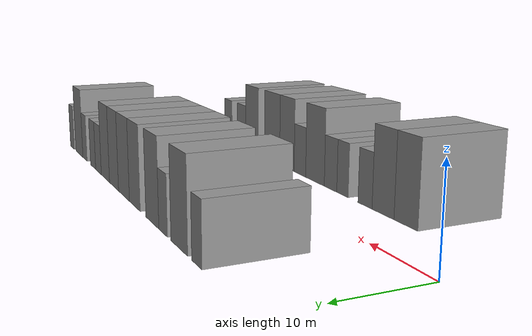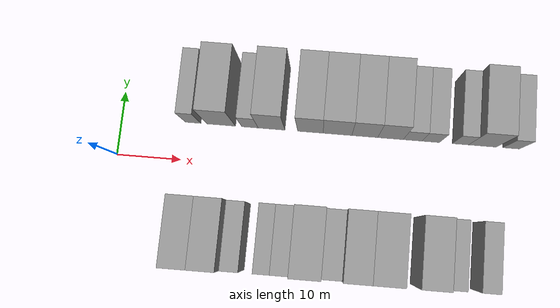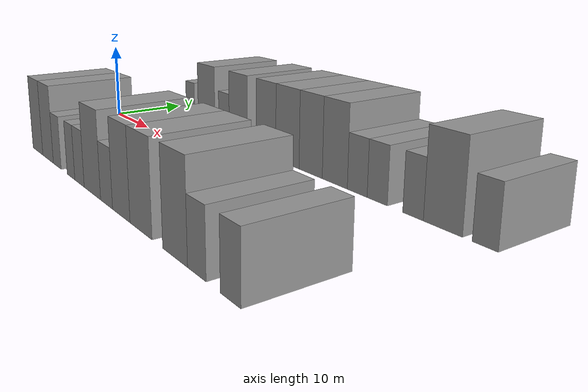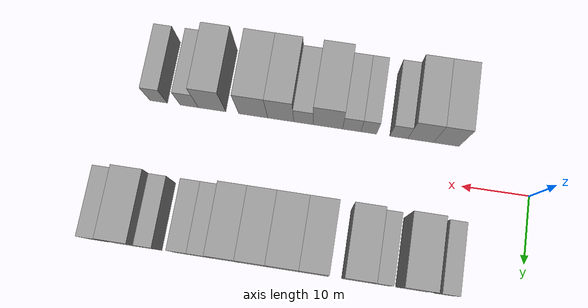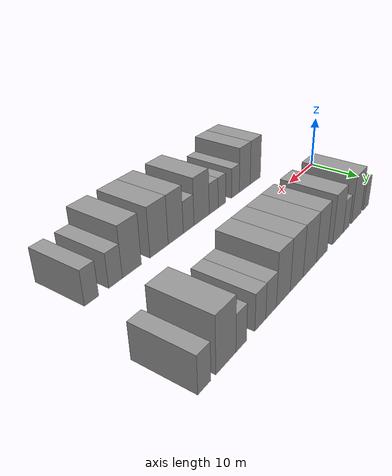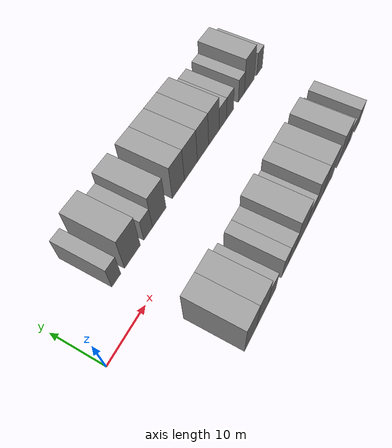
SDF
<sdf version="1.6">
 <world name="default">
  <model name="building_1">
   <static>1</static>
   <pose>11.2212 11.0000 0 0.000000 0.000000 1.570796</pose>
   <link name="link">
    <pose>0 0 3.00 0 0 0</pose>
    <collision name="collision"><geometry><box><size>10.0000 2.4425 6.0000</size></box></geometry></collision>
    <visual name="visual">
     <cast_shadows>0</cast_shadows>
     <geometry><box><size>10.0000 2.4425 6.0000</size></box></geometry>
     <material>
      <script>
       <uri>model://grey_wall/materials/scripts</uri>
       <uri>model://grey_wall/materials/textures</uri>
       <name>vrc/grey_wall</name>
      </script>
     </material>
    </visual>
   </link>
  </model>
  <model name="building_2">
   <static>1</static>
   <pose>15.6833 11.0000 0 0.000000 0.000000 1.570796</pose>
   <link name="link">
    <pose>0 0 4.50 0 0 0</pose>
    <collision name="collision"><geometry><box><size>10.0000 4.4816 9.0000</size></box></geometry></collision>
    <visual name="visual">
     <cast_shadows>0</cast_shadows>
     <geometry><box><size>10.0000 4.4816 9.0000</size></box></geometry>
     <material>
      <script>
       <uri>model://grey_wall/materials/scripts</uri>
       <uri>model://grey_wall/materials/textures</uri>
       <name>vrc/grey_wall</name>
      </script>
     </material>
    </visual>
   </link>
  </model>
  <model name="building_3">
   <static>1</static>
   <pose>20.2165 11.0000 0 0.000000 0.000000 1.570796</pose>
   <link name="link">
    <pose>0 0 3.00 0 0 0</pose>
    <collision name="collision"><geometry><box><size>10.0000 2.5849 6.0000</size></box></geometry></collision>
    <visual name="visual">
     <cast_shadows>0</cast_shadows>
     <geometry><box><size>10.0000 2.5849 6.0000</size></box></geometry>
     <material>
      <script>
       <uri>model://grey_wall/materials/scripts</uri>
       <uri>model://grey_wall/materials/textures</uri>
       <name>vrc/grey_wall</name>
      </script>
     </material>
    </visual>
   </link>
  </model>
  <model name="building_4">
   <static>1</static>
   <pose>23.6177 11.0000 0 0.000000 0.000000 1.570796</pose>
   <link name="link">
    <pose>0 0 4.50 0 0 0</pose>
    <collision name="collision"><geometry><box><size>10.0000 4.2175 9.0000</size></box></geometry></collision>
    <visual name="visual">
     <cast_shadows>0</cast_shadows>
     <geometry><box><size>10.0000 4.2175 9.0000</size></box></geometry>
     <material>
      <script>
       <uri>model://grey_wall/materials/scripts</uri>
       <uri>model://grey_wall/materials/textures</uri>
       <name>vrc/grey_wall</name>
      </script>
     </material>
    </visual>
   </link>
  </model>
  <model name="building_5">
   <static>1</static>
   <pose>29.7440 11.0000 0 0.000000 0.000000 1.570796</pose>
   <link name="link">
    <pose>0 0 4.50 0 0 0</pose>
    <collision name="collision"><geometry><box><size>10.0000 4.0352 9.0000</size></box></geometry></collision>
    <visual name="visual">
     <cast_shadows>0</cast_shadows>
     <geometry><box><size>10.0000 4.0352 9.0000</size></box></geometry>
     <material>
      <script>
       <uri>model://grey_wall/materials/scripts</uri>
       <uri>model://grey_wall/materials/textures</uri>
       <name>vrc/grey_wall</name>
      </script>
     </material>
    </visual>
   </link>
  </model>
  <model name="building_6">
   <static>1</static>
   <pose>34.0001 11.0000 0 0.000000 0.000000 1.570796</pose>
   <link name="link">
    <pose>0 0 4.50 0 0 0</pose>
    <collision name="collision"><geometry><box><size>10.0000 4.4770 9.0000</size></box></geometry></collision>
    <visual name="visual">
     <cast_shadows>0</cast_shadows>
     <geometry><box><size>10.0000 4.4770 9.0000</size></box></geometry>
     <material>
      <script>
       <uri>model://grey_wall/materials/scripts</uri>
       <uri>model://grey_wall/materials/textures</uri>
       <name>vrc/grey_wall</name>
      </script>
     </material>
    </visual>
   </link>
  </model>
  <model name="building_7">
   <static>1</static>
   <pose>38.2673 11.0000 0 0.000000 0.000000 1.570796</pose>
   <link name="link">
    <pose>0 0 4.50 0 0 0</pose>
    <collision name="collision"><geometry><box><size>10.0000 4.0575 9.0000</size></box></geometry></collision>
    <visual name="visual">
     <cast_shadows>0</cast_shadows>
     <geometry><box><size>10.0000 4.0575 9.0000</size></box></geometry>
     <material>
      <script>
       <uri>model://grey_wall/materials/scripts</uri>
       <uri>model://grey_wall/materials/textures</uri>
       <name>vrc/grey_wall</name>
      </script>
     </material>
    </visual>
   </link>
  </model>
  <model name="building_8">
   <static>1</static>
   <pose>42.3002 11.0000 0 0.000000 0.000000 1.570796</pose>
   <link name="link">
    <pose>0 0 4.50 0 0 0</pose>
    <collision name="collision"><geometry><box><size>10.0000 4.0082 9.0000</size></box></geometry></collision>
    <visual name="visual">
     <cast_shadows>0</cast_shadows>
     <geometry><box><size>10.0000 4.0082 9.0000</size></box></geometry>
     <material>
      <script>
       <uri>model://grey_wall/materials/scripts</uri>
       <uri>model://grey_wall/materials/textures</uri>
       <name>vrc/grey_wall</name>
      </script>
     </material>
    </visual>
   </link>
  </model>
  <model name="building_9">
   <static>1</static>
   <pose>45.7667 11.0000 0 0.000000 0.000000 1.570796</pose>
   <link name="link">
    <pose>0 0 3.00 0 0 0</pose>
    <collision name="collision"><geometry><box><size>10.0000 2.9247 6.0000</size></box></geometry></collision>
    <visual name="visual">
     <cast_shadows>0</cast_shadows>
     <geometry><box><size>10.0000 2.9247 6.0000</size></box></geometry>
     <material>
      <script>
       <uri>model://grey_wall/materials/scripts</uri>
       <uri>model://grey_wall/materials/textures</uri>
       <name>vrc/grey_wall</name>
      </script>
     </material>
    </visual>
   </link>
  </model>
  <model name="building_10">
   <static>1</static>
   <pose>48.6232 11.0000 0 0.000000 0.000000 1.570796</pose>
   <link name="link">
    <pose>0 0 3.00 0 0 0</pose>
    <collision name="collision"><geometry><box><size>10.0000 2.7884 6.0000</size></box></geometry></collision>
    <visual name="visual">
     <cast_shadows>0</cast_shadows>
     <geometry><box><size>10.0000 2.7884 6.0000</size></box></geometry>
     <material>
      <script>
       <uri>model://grey_wall/materials/scripts</uri>
       <uri>model://grey_wall/materials/textures</uri>
       <name>vrc/grey_wall</name>
      </script>
     </material>
    </visual>
   </link>
  </model>
  <model name="building_11">
   <static>1</static>
   <pose>53.2833 11.0000 0 0.000000 0.000000 1.570796</pose>
   <link name="link">
    <pose>0 0 3.00 0 0 0</pose>
    <collision name="collision"><geometry><box><size>10.0000 2.5317 6.0000</size></box></geometry></collision>
    <visual name="visual">
     <cast_shadows>0</cast_shadows>
     <geometry><box><size>10.0000 2.5317 6.0000</size></box></geometry>
     <material>
      <script>
       <uri>model://grey_wall/materials/scripts</uri>
       <uri>model://grey_wall/materials/textures</uri>
       <name>vrc/grey_wall</name>
      </script>
     </material>
    </visual>
   </link>
  </model>
  <model name="building_12">
   <static>1</static>
   <pose>56.7394 11.0000 0 0.000000 0.000000 1.570796</pose>
   <link name="link">
    <pose>0 0 4.50 0 0 0</pose>
    <collision name="collision"><geometry><box><size>10.0000 4.3805 9.0000</size></box></geometry></collision>
    <visual name="visual">
     <cast_shadows>0</cast_shadows>
     <geometry><box><size>10.0000 4.3805 9.0000</size></box></geometry>
     <material>
      <script>
       <uri>model://grey_wall/materials/scripts</uri>
       <uri>model://grey_wall/materials/textures</uri>
       <name>vrc/grey_wall</name>
      </script>
     </material>
    </visual>
   </link>
  </model>
  <model name="building_13">
   <static>1</static>
   <pose>61.2261 11.0000 0 0.000000 0.000000 1.570796</pose>
   <link name="link">
    <pose>0 0 3.00 0 0 0</pose>
    <collision name="collision"><geometry><box><size>10.0000 2.5931 6.0000</size></box></geometry></collision>
    <visual name="visual">
     <cast_shadows>0</cast_shadows>
     <geometry><box><size>10.0000 2.5931 6.0000</size></box></geometry>
     <material>
      <script>
       <uri>model://grey_wall/materials/scripts</uri>
       <uri>model://grey_wall/materials/textures</uri>
       <name>vrc/grey_wall</name>
      </script>
     </material>
    </visual>
   </link>
  </model>
  <model name="building_52">
   <static>1</static>
   <pose>12.9461 -11.0000 0 0.000000 0.000000 1.570796</pose>
   <link name="link">
    <pose>0 0 4.50 0 0 0</pose>
    <collision name="collision"><geometry><box><size>10.0000 3.8923 9.0000</size></box></geometry></collision>
    <visual name="visual">
     <cast_shadows>0</cast_shadows>
     <geometry><box><size>10.0000 3.8923 9.0000</size></box></geometry>
     <material>
      <script>
       <uri>model://grey_wall/materials/scripts</uri>
       <uri>model://grey_wall/materials/textures</uri>
       <name>vrc/grey_wall</name>
      </script>
     </material>
    </visual>
   </link>
  </model>
  <model name="building_53">
   <static>1</static>
   <pose>16.8509 -11.0000 0 0.000000 0.000000 1.570796</pose>
   <link name="link">
    <pose>0 0 4.50 0 0 0</pose>
    <collision name="collision"><geometry><box><size>10.0000 3.9173 9.0000</size></box></geometry></collision>
    <visual name="visual">
     <cast_shadows>0</cast_shadows>
     <geometry><box><size>10.0000 3.9173 9.0000</size></box></geometry>
     <material>
      <script>
       <uri>model://grey_wall/materials/scripts</uri>
       <uri>model://grey_wall/materials/textures</uri>
       <name>vrc/grey_wall</name>
      </script>
     </material>
    </visual>
   </link>
  </model>
  <model name="building_54">
   <static>1</static>
   <pose>20.1621 -11.0000 0 0.000000 0.000000 1.570796</pose>
   <link name="link">
    <pose>0 0 3.00 0 0 0</pose>
    <collision name="collision"><geometry><box><size>10.0000 2.7050 6.0000</size></box></geometry></collision>
    <visual name="visual">
     <cast_shadows>0</cast_shadows>
     <geometry><box><size>10.0000 2.7050 6.0000</size></box></geometry>
     <material>
      <script>
       <uri>model://grey_wall/materials/scripts</uri>
       <uri>model://grey_wall/materials/textures</uri>
       <name>vrc/grey_wall</name>
      </script>
     </material>
    </visual>
   </link>
  </model>
  <model name="building_55">
   <static>1</static>
   <pose>24.7179 -11.0000 0 0.000000 0.000000 1.570796</pose>
   <link name="link">
    <pose>0 0 3.00 0 0 0</pose>
    <collision name="collision"><geometry><box><size>10.0000 2.4067 6.0000</size></box></geometry></collision>
    <visual name="visual">
     <cast_shadows>0</cast_shadows>
     <geometry><box><size>10.0000 2.4067 6.0000</size></box></geometry>
     <material>
      <script>
       <uri>model://grey_wall/materials/scripts</uri>
       <uri>model://grey_wall/materials/textures</uri>
       <name>vrc/grey_wall</name>
      </script>
     </material>
    </visual>
   </link>
  </model>
  <model name="building_56">
   <static>1</static>
   <pose>27.3172 -11.0000 0 0.000000 0.000000 1.570796</pose>
   <link name="link">
    <pose>0 0 3.00 0 0 0</pose>
    <collision name="collision"><geometry><box><size>10.0000 2.7918 6.0000</size></box></geometry></collision>
    <visual name="visual">
     <cast_shadows>0</cast_shadows>
     <geometry><box><size>10.0000 2.7918 6.0000</size></box></geometry>
     <material>
      <script>
       <uri>model://grey_wall/materials/scripts</uri>
       <uri>model://grey_wall/materials/textures</uri>
       <name>vrc/grey_wall</name>
      </script>
     </material>
    </visual>
   </link>
  </model>
  <model name="building_57">
   <static>1</static>
   <pose>30.9598 -11.0000 0 0.000000 0.000000 1.570796</pose>
   <link name="link">
    <pose>0 0 4.50 0 0 0</pose>
    <collision name="collision"><geometry><box><size>10.0000 4.4933 9.0000</size></box></geometry></collision>
    <visual name="visual">
     <cast_shadows>0</cast_shadows>
     <geometry><box><size>10.0000 4.4933 9.0000</size></box></geometry>
     <material>
      <script>
       <uri>model://grey_wall/materials/scripts</uri>
       <uri>model://grey_wall/materials/textures</uri>
       <name>vrc/grey_wall</name>
      </script>
     </material>
    </visual>
   </link>
  </model>
  <model name="building_58">
   <static>1</static>
   <pose>34.6957 -11.0000 0 0.000000 0.000000 1.570796</pose>
   <link name="link">
    <pose>0 0 3.00 0 0 0</pose>
    <collision name="collision"><geometry><box><size>10.0000 2.9786 6.0000</size></box></geometry></collision>
    <visual name="visual">
     <cast_shadows>0</cast_shadows>
     <geometry><box><size>10.0000 2.9786 6.0000</size></box></geometry>
     <material>
      <script>
       <uri>model://grey_wall/materials/scripts</uri>
       <uri>model://grey_wall/materials/textures</uri>
       <name>vrc/grey_wall</name>
      </script>
     </material>
    </visual>
   </link>
  </model>
  <model name="building_59">
   <static>1</static>
   <pose>38.1851 -11.0000 0 0.000000 0.000000 1.570796</pose>
   <link name="link">
    <pose>0 0 4.50 0 0 0</pose>
    <collision name="collision"><geometry><box><size>10.0000 4.0000 9.0000</size></box></geometry></collision>
    <visual name="visual">
     <cast_shadows>0</cast_shadows>
     <geometry><box><size>10.0000 4.0000 9.0000</size></box></geometry>
     <material>
      <script>
       <uri>model://grey_wall/materials/scripts</uri>
       <uri>model://grey_wall/materials/textures</uri>
       <name>vrc/grey_wall</name>
      </script>
     </material>
    </visual>
   </link>
  </model>
  <model name="building_60">
   <static>1</static>
   <pose>42.4343 -11.0000 0 0.000000 0.000000 1.570796</pose>
   <link name="link">
    <pose>0 0 4.50 0 0 0</pose>
    <collision name="collision"><geometry><box><size>10.0000 4.4985 9.0000</size></box></geometry></collision>
    <visual name="visual">
     <cast_shadows>0</cast_shadows>
     <geometry><box><size>10.0000 4.4985 9.0000</size></box></geometry>
     <material>
      <script>
       <uri>model://grey_wall/materials/scripts</uri>
       <uri>model://grey_wall/materials/textures</uri>
       <name>vrc/grey_wall</name>
      </script>
     </material>
    </visual>
   </link>
  </model>
  <model name="building_61">
   <static>1</static>
   <pose>48.7974 -11.0000 0 0.000000 0.000000 1.570796</pose>
   <link name="link">
    <pose>0 0 4.50 0 0 0</pose>
    <collision name="collision"><geometry><box><size>10.0000 4.2277 9.0000</size></box></geometry></collision>
    <visual name="visual">
     <cast_shadows>0</cast_shadows>
     <geometry><box><size>10.0000 4.2277 9.0000</size></box></geometry>
     <material>
      <script>
       <uri>model://grey_wall/materials/scripts</uri>
       <uri>model://grey_wall/materials/textures</uri>
       <name>vrc/grey_wall</name>
      </script>
     </material>
    </visual>
   </link>
  </model>
  <model name="building_62">
   <static>1</static>
   <pose>52.3342 -11.0000 0 0.000000 0.000000 1.570796</pose>
   <link name="link">
    <pose>0 0 3.00 0 0 0</pose>
    <collision name="collision"><geometry><box><size>10.0000 2.8459 6.0000</size></box></geometry></collision>
    <visual name="visual">
     <cast_shadows>0</cast_shadows>
     <geometry><box><size>10.0000 2.8459 6.0000</size></box></geometry>
     <material>
      <script>
       <uri>model://grey_wall/materials/scripts</uri>
       <uri>model://grey_wall/materials/textures</uri>
       <name>vrc/grey_wall</name>
      </script>
     </material>
    </visual>
   </link>
  </model>
  <model name="building_63">
   <static>1</static>
   <pose>57.1137 -11.0000 0 0.000000 0.000000 1.570796</pose>
   <link name="link">
    <pose>0 0 3.00 0 0 0</pose>
    <collision name="collision"><geometry><box><size>10.0000 2.7132 6.0000</size></box></geometry></collision>
    <visual name="visual">
     <cast_shadows>0</cast_shadows>
     <geometry><box><size>10.0000 2.7132 6.0000</size></box></geometry>
     <material>
      <script>
       <uri>model://grey_wall/materials/scripts</uri>
       <uri>model://grey_wall/materials/textures</uri>
       <name>vrc/grey_wall</name>
      </script>
     </material>
    </visual>
   </link>
  </model>
 </world>
</sdf>
